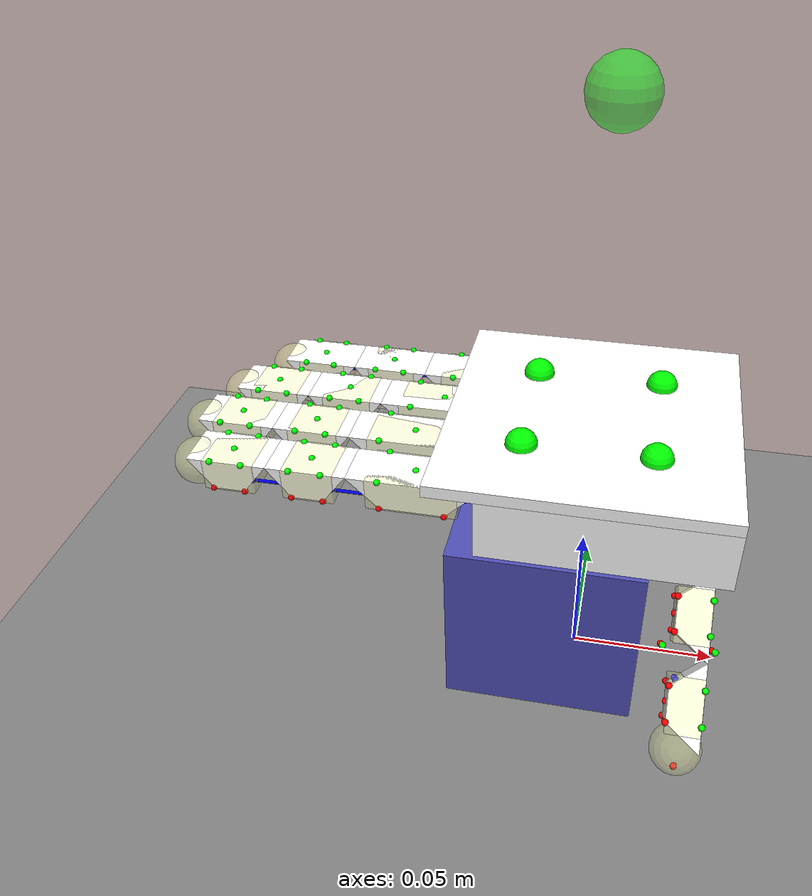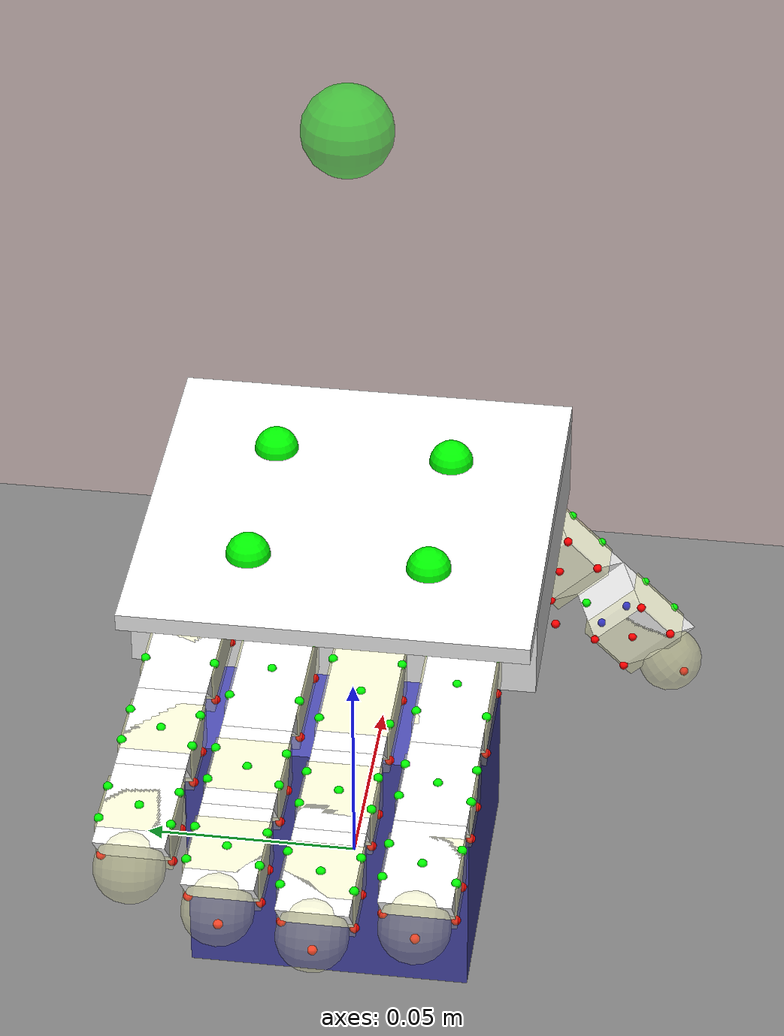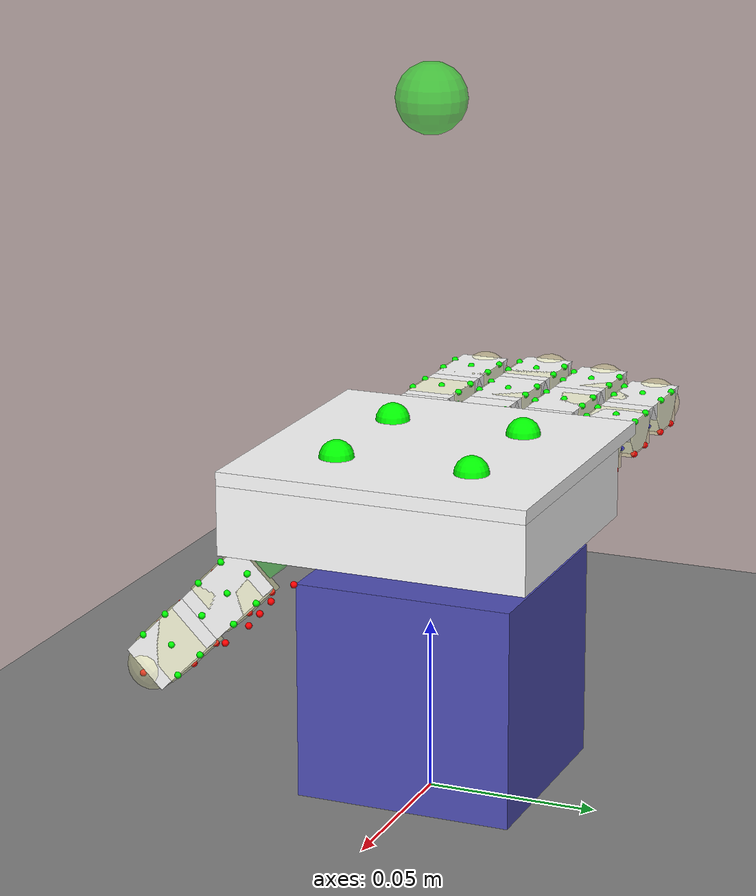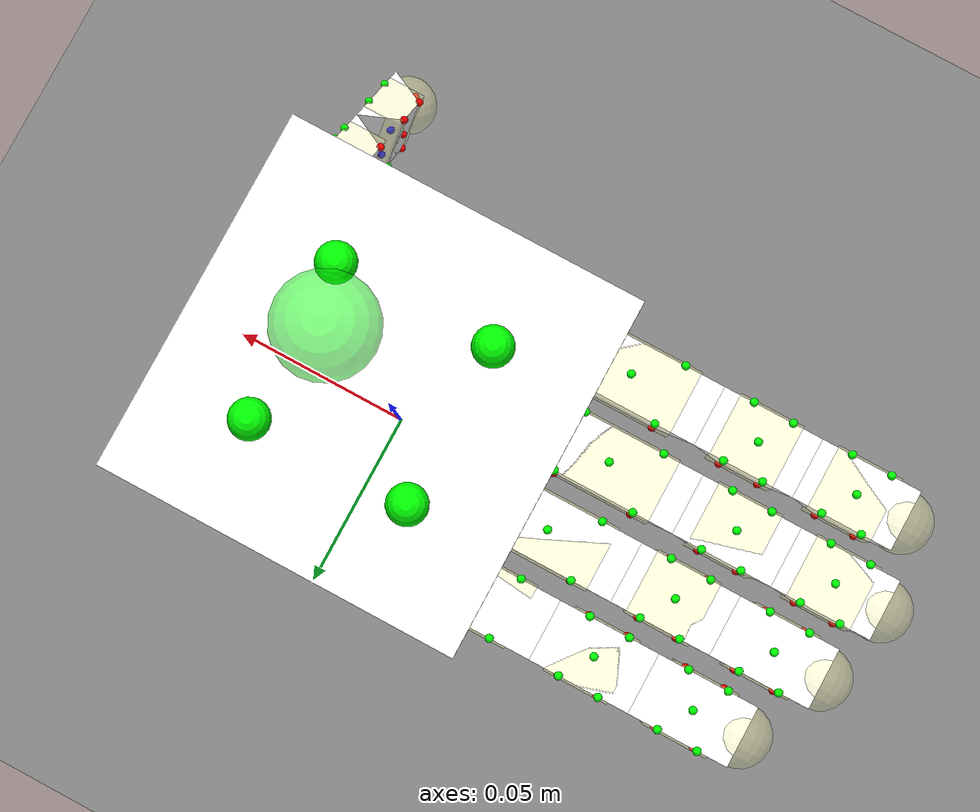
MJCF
<?xml version="1.0" ?>
<!-- Reorient手模型, 5x5 sphere tac sensors -->
<mujoco model="hand">
    <compiler angle="radian"/>
    <option integrator="implicitfast" />
    <option>
        <flag filterparent="disable"/>
    </option>
    <option gravity="0 0 -9.81"/>
    <keyframe>
        <key name="home"
            qpos="0 0 0 0 0 0 0 0 0 0 0 0 0 0 0 0 0 0 0 0 0 0 0 0 0 0 0 0 0 0 0 0"
            qvel="0 0 0 0 0 0 0 0 0 0 0 0 0 0 0 0 0 0 0 0 0 0 0 0 0 0 0 0 0 0 0"
            ctrl="0 0 0 0 0 0 0 0 0 0 0 0 0 0 0 0 0 0"
        />
    </keyframe>
    <default>
        <geom solref="0.001 1" solimp="0.99 0.999 0.0001"/>
        <default class="cube">
            <geom friction="2.0 0.1 0.002" contype="2" conaffinity="1" condim="4" />
        </default>
        <default class="hand">
            <geom contype="1" conaffinity="2" type="mesh" density="1250" friction="0.7 0.05 0.0002" solref="0.02 1.5" solimp="0.9 0.95 0.001" condim="3" rgba="0 0 1 0"/>
        </default>
        <default class="visual">
            <geom contype="0" conaffinity="0" group="2" density="0"/>
        </default>
        <default class="tendon">
            <tendon width=".0005" rgba="0 0 .9 1" solreflimit=".001 1" solimplimit="0.99 0.999 0.00001 0.1 20" stiffness="2000"/>
        </default>
        <default class="thumb_joint">
            <joint type="hinge" limited="true" solreflimit=".001 1" solimplimit="0.97 0.99 0.00001 0.1 2" damping="1" stiffness="1"/>
        </default>
        <default class="tip">
            <geom type="sphere" size="0.0075" rgba="1 1 .6 .3" contype="1" conaffinity="2" density="1000"
            friction="2.5 0.2 0.01" solref="0.01 1" solimp="0.98 0.995 0.001" condim="6"/>
        </default>
    </default>
    <asset>
        <mesh name="thumb_base_link" vertex="0.0 0.0 -0.0075 0.04 0.0 -0.0075 0.03 0.01 -0.0075 0.01 0.01 -0.0075 0.0 0.0 0.0075 0.04 0.0 0.0075 0.03 0.01 0.0075 0.01 0.01 0.0075" normal="-0.7734590803390136 -0.3203772410170408 -0.5469181606780271 0.7734590803390136 -0.3203772410170408 -0.5469181606780271 0.2971085791188998 0.7172835612062476 -0.6302624731310217 -0.2971085791188997 0.7172835612062475 -0.6302624731310217 -0.7734590803390136 -0.32037724101704074 0.5469181606780271 0.7734590803390138 -0.32037724101704057 0.5469181606780271 0.29710857911889976 0.7172835612062477 0.6302624731310216 -0.29710857911889976 0.7172835612062476 0.6302624731310217" face="1 0 3 3 2 1 7 4 5 5 6 7 5 4 1 1 4 0 6 5 2 2 5 1 4 7 0 0 7 3 7 6 3 3 6 2"/>
        <mesh name="thumb_link_1" vertex="0.0 0.0 -0.0075 0.04 0.0 -0.0075 0.03 0.01 -0.0075 0.01 0.01 -0.0075 0.0 0.0 0.0075 0.04 0.0 0.0075 0.03 0.01 0.0075 0.01 0.01 0.0075" normal="-0.7734590803390136 -0.3203772410170408 -0.5469181606780271 0.7734590803390136 -0.3203772410170408 -0.5469181606780271 0.2971085791188998 0.7172835612062476 -0.6302624731310217 -0.2971085791188997 0.7172835612062475 -0.6302624731310217 -0.7734590803390136 -0.32037724101704074 0.5469181606780271 0.7734590803390138 -0.32037724101704057 0.5469181606780271 0.29710857911889976 0.7172835612062477 0.6302624731310216 -0.29710857911889976 0.7172835612062476 0.6302624731310217" face="1 0 3 3 2 1 7 4 5 5 6 7 5 4 1 1 4 0 6 5 2 2 5 1 4 7 0 0 7 3 7 6 3 3 6 2"/>
        <mesh name="thumb_link_2" vertex="0.0 0.0 -0.0075 0.025 0.0 -0.0075 0.0175 0.01 -0.0075 0.007500000000000001 0.01 -0.0075 0.0 0.0 0.0075 0.025 0.0 0.0075 0.0175 0.01 0.0075 0.007500000000000001 0.01 0.0075" normal="-0.7464925414001442 -0.3732462707000721 -0.5508503490444955 0.7464925414001442 -0.3732462707000721 -0.5508503490444956 0.351257248032334 0.702514496064668 -0.618944043128098 -0.351257248032334 0.702514496064668 -0.618944043128098 -0.7464925414001442 -0.3732462707000721 0.5508503490444955 0.7464925414001442 -0.373246270700072 0.5508503490444956 0.351257248032334 0.7025144960646681 0.618944043128098 -0.351257248032334 0.702514496064668 0.618944043128098" face="1 0 3 3 2 1 7 4 5 5 6 7 5 4 1 1 4 0 6 5 2 2 5 1 4 7 0 0 7 3 7 6 3 3 6 2"/>
        <mesh name="thumb_link_3" vertex="0.0 0.0 -0.0075 0.025 0.0 -0.0075 0.0175 0.01 -0.0075 0.007500000000000001 0.01 -0.0075 0.0 0.0 0.0075 0.025 0.0 0.0075 0.0175 0.01 0.0075 0.007500000000000001 0.01 0.0075" normal="-0.7464925414001442 -0.3732462707000721 -0.5508503490444955 0.7464925414001442 -0.3732462707000721 -0.5508503490444956 0.351257248032334 0.702514496064668 -0.618944043128098 -0.351257248032334 0.702514496064668 -0.618944043128098 -0.7464925414001442 -0.3732462707000721 0.5508503490444955 0.7464925414001442 -0.373246270700072 0.5508503490444956 0.351257248032334 0.7025144960646681 0.618944043128098 -0.351257248032334 0.702514496064668 0.618944043128098" face="1 0 3 3 2 1 7 4 5 5 6 7 5 4 1 1 4 0 6 5 2 2 5 1 4 7 0 0 7 3 7 6 3 3 6 2"/>
        <mesh name="index_base_link" vertex="0.0 0.0 -0.0075 0.04 0.0 -0.0075 0.03 0.01 -0.0075 0.01 0.01 -0.0075 0.0 0.0 0.0075 0.04 0.0 0.0075 0.03 0.01 0.0075 0.01 0.01 0.0075" normal="-0.7734590803390136 -0.3203772410170408 -0.5469181606780271 0.7734590803390136 -0.3203772410170408 -0.5469181606780271 0.2971085791188998 0.7172835612062476 -0.6302624731310217 -0.2971085791188997 0.7172835612062475 -0.6302624731310217 -0.7734590803390136 -0.32037724101704074 0.5469181606780271 0.7734590803390138 -0.32037724101704057 0.5469181606780271 0.29710857911889976 0.7172835612062477 0.6302624731310216 -0.29710857911889976 0.7172835612062476 0.6302624731310217" face="1 0 3 3 2 1 7 4 5 5 6 7 5 4 1 1 4 0 6 5 2 2 5 1 4 7 0 0 7 3 7 6 3 3 6 2"/>
        <mesh name="index_link_1" vertex="0.0 0.0 -0.0075 0.04 0.0 -0.0075 0.03 0.01 -0.0075 0.01 0.01 -0.0075 0.0 0.0 0.0075 0.04 0.0 0.0075 0.03 0.01 0.0075 0.01 0.01 0.0075" normal="-0.7734590803390136 -0.3203772410170408 -0.5469181606780271 0.7734590803390136 -0.3203772410170408 -0.5469181606780271 0.2971085791188998 0.7172835612062476 -0.6302624731310217 -0.2971085791188997 0.7172835612062475 -0.6302624731310217 -0.7734590803390136 -0.32037724101704074 0.5469181606780271 0.7734590803390138 -0.32037724101704057 0.5469181606780271 0.29710857911889976 0.7172835612062477 0.6302624731310216 -0.29710857911889976 0.7172835612062476 0.6302624731310217" face="1 0 3 3 2 1 7 4 5 5 6 7 5 4 1 1 4 0 6 5 2 2 5 1 4 7 0 0 7 3 7 6 3 3 6 2"/>
        <mesh name="index_link_2" vertex="0.0 0.0 -0.0075 0.025 0.0 -0.0075 0.0175 0.01 -0.0075 0.007500000000000001 0.01 -0.0075 0.0 0.0 0.0075 0.025 0.0 0.0075 0.0175 0.01 0.0075 0.007500000000000001 0.01 0.0075" normal="-0.7464925414001442 -0.3732462707000721 -0.5508503490444955 0.7464925414001442 -0.3732462707000721 -0.5508503490444956 0.351257248032334 0.702514496064668 -0.618944043128098 -0.351257248032334 0.702514496064668 -0.618944043128098 -0.7464925414001442 -0.3732462707000721 0.5508503490444955 0.7464925414001442 -0.373246270700072 0.5508503490444956 0.351257248032334 0.7025144960646681 0.618944043128098 -0.351257248032334 0.702514496064668 0.618944043128098" face="1 0 3 3 2 1 7 4 5 5 6 7 5 4 1 1 4 0 6 5 2 2 5 1 4 7 0 0 7 3 7 6 3 3 6 2"/>
        <mesh name="index_link_3" vertex="0.0 0.0 -0.0075 0.025 0.0 -0.0075 0.0175 0.01 -0.0075 0.007500000000000001 0.01 -0.0075 0.0 0.0 0.0075 0.025 0.0 0.0075 0.0175 0.01 0.0075 0.007500000000000001 0.01 0.0075" normal="-0.7464925414001442 -0.3732462707000721 -0.5508503490444955 0.7464925414001442 -0.3732462707000721 -0.5508503490444956 0.351257248032334 0.702514496064668 -0.618944043128098 -0.351257248032334 0.702514496064668 -0.618944043128098 -0.7464925414001442 -0.3732462707000721 0.5508503490444955 0.7464925414001442 -0.373246270700072 0.5508503490444956 0.351257248032334 0.7025144960646681 0.618944043128098 -0.351257248032334 0.702514496064668 0.618944043128098" face="1 0 3 3 2 1 7 4 5 5 6 7 5 4 1 1 4 0 6 5 2 2 5 1 4 7 0 0 7 3 7 6 3 3 6 2"/>
        <mesh name="middle_base_link" vertex="0.0 0.0 -0.0075 0.04 0.0 -0.0075 0.03 0.01 -0.0075 0.01 0.01 -0.0075 0.0 0.0 0.0075 0.04 0.0 0.0075 0.03 0.01 0.0075 0.01 0.01 0.0075" normal="-0.7734590803390136 -0.3203772410170408 -0.5469181606780271 0.7734590803390136 -0.3203772410170408 -0.5469181606780271 0.2971085791188998 0.7172835612062476 -0.6302624731310217 -0.2971085791188997 0.7172835612062475 -0.6302624731310217 -0.7734590803390136 -0.32037724101704074 0.5469181606780271 0.7734590803390138 -0.32037724101704057 0.5469181606780271 0.29710857911889976 0.7172835612062477 0.6302624731310216 -0.29710857911889976 0.7172835612062476 0.6302624731310217" face="1 0 3 3 2 1 7 4 5 5 6 7 5 4 1 1 4 0 6 5 2 2 5 1 4 7 0 0 7 3 7 6 3 3 6 2"/>
        <mesh name="middle_link_1" vertex="0.0 0.0 -0.0075 0.04 0.0 -0.0075 0.03 0.01 -0.0075 0.01 0.01 -0.0075 0.0 0.0 0.0075 0.04 0.0 0.0075 0.03 0.01 0.0075 0.01 0.01 0.0075" normal="-0.7734590803390136 -0.3203772410170408 -0.5469181606780271 0.7734590803390136 -0.3203772410170408 -0.5469181606780271 0.2971085791188998 0.7172835612062476 -0.6302624731310217 -0.2971085791188997 0.7172835612062475 -0.6302624731310217 -0.7734590803390136 -0.32037724101704074 0.5469181606780271 0.7734590803390138 -0.32037724101704057 0.5469181606780271 0.29710857911889976 0.7172835612062477 0.6302624731310216 -0.29710857911889976 0.7172835612062476 0.6302624731310217" face="1 0 3 3 2 1 7 4 5 5 6 7 5 4 1 1 4 0 6 5 2 2 5 1 4 7 0 0 7 3 7 6 3 3 6 2"/>
        <mesh name="middle_link_2" vertex="0.0 0.0 -0.0075 0.025 0.0 -0.0075 0.0175 0.01 -0.0075 0.007500000000000001 0.01 -0.0075 0.0 0.0 0.0075 0.025 0.0 0.0075 0.0175 0.01 0.0075 0.007500000000000001 0.01 0.0075" normal="-0.7464925414001442 -0.3732462707000721 -0.5508503490444955 0.7464925414001442 -0.3732462707000721 -0.5508503490444956 0.351257248032334 0.702514496064668 -0.618944043128098 -0.351257248032334 0.702514496064668 -0.618944043128098 -0.7464925414001442 -0.3732462707000721 0.5508503490444955 0.7464925414001442 -0.373246270700072 0.5508503490444956 0.351257248032334 0.7025144960646681 0.618944043128098 -0.351257248032334 0.702514496064668 0.618944043128098" face="1 0 3 3 2 1 7 4 5 5 6 7 5 4 1 1 4 0 6 5 2 2 5 1 4 7 0 0 7 3 7 6 3 3 6 2"/>
        <mesh name="middle_link_3" vertex="0.0 0.0 -0.0075 0.025 0.0 -0.0075 0.0175 0.01 -0.0075 0.007500000000000001 0.01 -0.0075 0.0 0.0 0.0075 0.025 0.0 0.0075 0.0175 0.01 0.0075 0.007500000000000001 0.01 0.0075" normal="-0.7464925414001442 -0.3732462707000721 -0.5508503490444955 0.7464925414001442 -0.3732462707000721 -0.5508503490444956 0.351257248032334 0.702514496064668 -0.618944043128098 -0.351257248032334 0.702514496064668 -0.618944043128098 -0.7464925414001442 -0.3732462707000721 0.5508503490444955 0.7464925414001442 -0.373246270700072 0.5508503490444956 0.351257248032334 0.7025144960646681 0.618944043128098 -0.351257248032334 0.702514496064668 0.618944043128098" face="1 0 3 3 2 1 7 4 5 5 6 7 5 4 1 1 4 0 6 5 2 2 5 1 4 7 0 0 7 3 7 6 3 3 6 2"/>
        <mesh name="ring_base_link" vertex="0.0 0.0 -0.0075 0.04 0.0 -0.0075 0.03 0.01 -0.0075 0.01 0.01 -0.0075 0.0 0.0 0.0075 0.04 0.0 0.0075 0.03 0.01 0.0075 0.01 0.01 0.0075" normal="-0.7734590803390136 -0.3203772410170408 -0.5469181606780271 0.7734590803390136 -0.3203772410170408 -0.5469181606780271 0.2971085791188998 0.7172835612062476 -0.6302624731310217 -0.2971085791188997 0.7172835612062475 -0.6302624731310217 -0.7734590803390136 -0.32037724101704074 0.5469181606780271 0.7734590803390138 -0.32037724101704057 0.5469181606780271 0.29710857911889976 0.7172835612062477 0.6302624731310216 -0.29710857911889976 0.7172835612062476 0.6302624731310217" face="1 0 3 3 2 1 7 4 5 5 6 7 5 4 1 1 4 0 6 5 2 2 5 1 4 7 0 0 7 3 7 6 3 3 6 2"/>
        <mesh name="ring_link_1" vertex="0.0 0.0 -0.0075 0.04 0.0 -0.0075 0.03 0.01 -0.0075 0.01 0.01 -0.0075 0.0 0.0 0.0075 0.04 0.0 0.0075 0.03 0.01 0.0075 0.01 0.01 0.0075" normal="-0.7734590803390136 -0.3203772410170408 -0.5469181606780271 0.7734590803390136 -0.3203772410170408 -0.5469181606780271 0.2971085791188998 0.7172835612062476 -0.6302624731310217 -0.2971085791188997 0.7172835612062475 -0.6302624731310217 -0.7734590803390136 -0.32037724101704074 0.5469181606780271 0.7734590803390138 -0.32037724101704057 0.5469181606780271 0.29710857911889976 0.7172835612062477 0.6302624731310216 -0.29710857911889976 0.7172835612062476 0.6302624731310217" face="1 0 3 3 2 1 7 4 5 5 6 7 5 4 1 1 4 0 6 5 2 2 5 1 4 7 0 0 7 3 7 6 3 3 6 2"/>
        <mesh name="ring_link_2" vertex="0.0 0.0 -0.0075 0.025 0.0 -0.0075 0.0175 0.01 -0.0075 0.007500000000000001 0.01 -0.0075 0.0 0.0 0.0075 0.025 0.0 0.0075 0.0175 0.01 0.0075 0.007500000000000001 0.01 0.0075" normal="-0.7464925414001442 -0.3732462707000721 -0.5508503490444955 0.7464925414001442 -0.3732462707000721 -0.5508503490444956 0.351257248032334 0.702514496064668 -0.618944043128098 -0.351257248032334 0.702514496064668 -0.618944043128098 -0.7464925414001442 -0.3732462707000721 0.5508503490444955 0.7464925414001442 -0.373246270700072 0.5508503490444956 0.351257248032334 0.7025144960646681 0.618944043128098 -0.351257248032334 0.702514496064668 0.618944043128098" face="1 0 3 3 2 1 7 4 5 5 6 7 5 4 1 1 4 0 6 5 2 2 5 1 4 7 0 0 7 3 7 6 3 3 6 2"/>
        <mesh name="ring_link_3" vertex="0.0 0.0 -0.0075 0.025 0.0 -0.0075 0.0175 0.01 -0.0075 0.007500000000000001 0.01 -0.0075 0.0 0.0 0.0075 0.025 0.0 0.0075 0.0175 0.01 0.0075 0.007500000000000001 0.01 0.0075" normal="-0.7464925414001442 -0.3732462707000721 -0.5508503490444955 0.7464925414001442 -0.3732462707000721 -0.5508503490444956 0.351257248032334 0.702514496064668 -0.618944043128098 -0.351257248032334 0.702514496064668 -0.618944043128098 -0.7464925414001442 -0.3732462707000721 0.5508503490444955 0.7464925414001442 -0.373246270700072 0.5508503490444956 0.351257248032334 0.7025144960646681 0.618944043128098 -0.351257248032334 0.702514496064668 0.618944043128098" face="1 0 3 3 2 1 7 4 5 5 6 7 5 4 1 1 4 0 6 5 2 2 5 1 4 7 0 0 7 3 7 6 3 3 6 2"/>
        <mesh name="little_base_link" vertex="0.0 0.0 -0.0075 0.04 0.0 -0.0075 0.03 0.01 -0.0075 0.01 0.01 -0.0075 0.0 0.0 0.0075 0.04 0.0 0.0075 0.03 0.01 0.0075 0.01 0.01 0.0075" normal="-0.7734590803390136 -0.3203772410170408 -0.5469181606780271 0.7734590803390136 -0.3203772410170408 -0.5469181606780271 0.2971085791188998 0.7172835612062476 -0.6302624731310217 -0.2971085791188997 0.7172835612062475 -0.6302624731310217 -0.7734590803390136 -0.32037724101704074 0.5469181606780271 0.7734590803390138 -0.32037724101704057 0.5469181606780271 0.29710857911889976 0.7172835612062477 0.6302624731310216 -0.29710857911889976 0.7172835612062476 0.6302624731310217" face="1 0 3 3 2 1 7 4 5 5 6 7 5 4 1 1 4 0 6 5 2 2 5 1 4 7 0 0 7 3 7 6 3 3 6 2"/>
        <mesh name="little_link_1" vertex="0.0 0.0 -0.0075 0.04 0.0 -0.0075 0.03 0.01 -0.0075 0.01 0.01 -0.0075 0.0 0.0 0.0075 0.04 0.0 0.0075 0.03 0.01 0.0075 0.01 0.01 0.0075" normal="-0.7734590803390136 -0.3203772410170408 -0.5469181606780271 0.7734590803390136 -0.3203772410170408 -0.5469181606780271 0.2971085791188998 0.7172835612062476 -0.6302624731310217 -0.2971085791188997 0.7172835612062475 -0.6302624731310217 -0.7734590803390136 -0.32037724101704074 0.5469181606780271 0.7734590803390138 -0.32037724101704057 0.5469181606780271 0.29710857911889976 0.7172835612062477 0.6302624731310216 -0.29710857911889976 0.7172835612062476 0.6302624731310217" face="1 0 3 3 2 1 7 4 5 5 6 7 5 4 1 1 4 0 6 5 2 2 5 1 4 7 0 0 7 3 7 6 3 3 6 2"/>
        <mesh name="little_link_2" vertex="0.0 0.0 -0.0075 0.025 0.0 -0.0075 0.0175 0.01 -0.0075 0.007500000000000001 0.01 -0.0075 0.0 0.0 0.0075 0.025 0.0 0.0075 0.0175 0.01 0.0075 0.007500000000000001 0.01 0.0075" normal="-0.7464925414001442 -0.3732462707000721 -0.5508503490444955 0.7464925414001442 -0.3732462707000721 -0.5508503490444956 0.351257248032334 0.702514496064668 -0.618944043128098 -0.351257248032334 0.702514496064668 -0.618944043128098 -0.7464925414001442 -0.3732462707000721 0.5508503490444955 0.7464925414001442 -0.373246270700072 0.5508503490444956 0.351257248032334 0.7025144960646681 0.618944043128098 -0.351257248032334 0.702514496064668 0.618944043128098" face="1 0 3 3 2 1 7 4 5 5 6 7 5 4 1 1 4 0 6 5 2 2 5 1 4 7 0 0 7 3 7 6 3 3 6 2"/>
        <mesh name="little_link_3" vertex="0.0 0.0 -0.0075 0.025 0.0 -0.0075 0.0175 0.01 -0.0075 0.007500000000000001 0.01 -0.0075 0.0 0.0 0.0075 0.025 0.0 0.0075 0.0175 0.01 0.0075 0.007500000000000001 0.01 0.0075" normal="-0.7464925414001442 -0.3732462707000721 -0.5508503490444955 0.7464925414001442 -0.3732462707000721 -0.5508503490444956 0.351257248032334 0.702514496064668 -0.618944043128098 -0.351257248032334 0.702514496064668 -0.618944043128098 -0.7464925414001442 -0.3732462707000721 0.5508503490444955 0.7464925414001442 -0.373246270700072 0.5508503490444956 0.351257248032334 0.7025144960646681 0.618944043128098 -0.351257248032334 0.702514496064668 0.618944043128098" face="1 0 3 3 2 1 7 4 5 5 6 7 5 4 1 1 4 0 6 5 2 2 5 1 4 7 0 0 7 3 7 6 3 3 6 2"/>
        <texture type="2d" name="groundplane" builtin="checker" mark="edge" rgb1="1 1 1" rgb2="0 0 0" markrgb="0 0 0" width="300" height="300"/>
        <material name="groundplane" texture="groundplane" texuniform="true" texrepeat="5 5" reflectance="0"/>
    </asset>
    <worldbody>
        <!-- 一些辅助元素 -->
        <site name="target" pos="0 0 0.2" size="0.01" rgba="0 1 0 0.5"/>
        <geom name="floor" pos="0 0 0" size="0 0 0.01" type="plane" material="groundplane" contype="1" conaffinity="1" friction="1 0.05 0.05" solref="0.001 1" solimp="0.98 0.99 0.001"/>
        <!-- 手的定义 -->
        <body name="palm" pos="0 0 0.1" euler="0 3.1415 0" childclass="hand">
            <joint name="palm_slide_x" type="slide" axis="1 0 0" range="-.5 .5" limited="true" solreflimit=".001 1" solimplimit="0.97 0.99 0.00001 0.1 2" damping="0.2"/>
            <joint name="palm_slide_y" type="slide" axis="0 1 0" range="-.5 .5" limited="true" solreflimit=".001 1" solimplimit="0.97 0.99 0.00001 0.1 2" damping="0.2"/>
            <joint name="palm_slide_z" type="slide" axis="0 0 1" range="-.2 .12" limited="true" solreflimit=".001 1" solimplimit="0.97 0.99 0.00001 0.1 2" damping="0.2"/>
            <joint name="palm_rotate_x" type="hinge" axis="1 0 0" range="-1.57 1.57" limited="true" solreflimit=".001 1" solimplimit="0.97 0.99 0.00001 0.1 2" damping="0.2"/>
            <joint name="palm_rotate_y" type="hinge" axis="0 1 0" range="-1.57 1.57" limited="true" solreflimit=".001 1" solimplimit="0.97 0.99 0.00001 0.1 2" damping="0.2"/>
            <joint name="palm_rotate_z" type="hinge" axis="0 0 1" range="-3.14 3.14" limited="true" solreflimit=".001 1" solimplimit="0.97 0.99 0.00001 0.1 2" damping="0.2"/>
            <geom type="box" size="0.045 0.045 0.002" rgba="1 1 1 1" density="200"/>
            <geom type="box" size="0.0375 0.045 0.01" pos="-0.0075 0 0.012" rgba="1 1 1 1" density="200"/>
            <site name="inner_palm_1" size="0.005" rgba="1 0 0 1" pos=".02 .02 0.022"/>
            <site name="inner_palm_2" size="0.005" rgba="1 0 0 1" pos=".02 -.02 0.022"/>
            <site name="inner_palm_3" size="0.005" rgba="1 0 0 1" pos="-.02 .02 0.022"/>
            <site name="inner_palm_4" size="0.005" rgba="1 0 0 1" pos="-.02 -.02 0.022"/>
            <site name="outer_palm_1" size="0.005" rgba="0 1 0 1" pos=".02 .02 -0.002"/>
            <site name="outer_palm_2" size="0.005" rgba="0 1 0 1" pos=".02 -.02 -0.002"/>
            <site name="outer_palm_3" size="0.005" rgba="0 1 0 1" pos="-.02 .02 -0.002"/>
            <site name="outer_palm_4" size="0.005" rgba="0 1 0 1" pos="-.02 -.02 -0.002"/>
            <!-- 拇指基座 -->
            <body name="thumb_base_link" pos="-0.035 -0.02 0.01" euler="1.57 -1.57 0.0">
                <joint name="thumb_joint_0" axis="0 1 0" range="-0.5 0.5" class="thumb_joint"/>
                <inertial pos="0 0 0" mass="0.01" diaginertia="1e-5 1e-5 1e-5"/>
                <geom type="sphere" size=".002" class="visual"/>
                <!-- 拇指第一节 -->
                <body name="thumb_link_1" pos="0.01 0.01 0.0" euler="0.0 0.0 0.785">
                    <joint name="thumb_joint_1" axis="0 0 1" range="0 2.8" class="thumb_joint"/>
                    <geom class="visual" type="sphere" size=".002"/>
                    <inertial pos="0 0 0" mass="0.01" diaginertia="1e-5 1e-5 1e-5"/>
                    <geom type="box" size="0.007 0.005 0.005" rgba="0 1 0 0.3" density="200" class="visual"/>
                    <site name="inner_thumb_1_0" size="0.001" rgba="1 0 0 1" pos="0.02 0.01 0"/>
                    <site name="inner_thumb_1_1" size="0.001" rgba="1 0 0 1" pos="0.01 0.01 0.0075"/>
                    <site name="inner_thumb_1_2" size="0.001" rgba="1 0 0 1" pos="0.01 0.01 -0.0075"/>
                    <site name="inner_thumb_1_3" size="0.001" rgba="1 0 0 1" pos="0.03 0.01 0.0075"/>
                    <site name="inner_thumb_1_4" size="0.001" rgba="1 0 0 1" pos="0.03 0.01 -0.0075"/>
                    <site name="outer_thumb_1_0" size="0.001" rgba="0 1 0 1" pos="0.02 0 0"/>
                    <site name="outer_thumb_1_1" size="0.001" rgba="0 1 0 1" pos="0.01 0 0.0075"/>
                    <site name="outer_thumb_1_2" size="0.001" rgba="0 1 0 1" pos="0.01 0 -0.0075"/>
                    <site name="outer_thumb_1_3" size="0.001" rgba="0 1 0 1" pos="0.03 0 0.0075"/>
                    <site name="outer_thumb_1_4" size="0.001" rgba="0 1 0 1" pos="0.03 0 -0.0075"/>
                    <!-- 拇指第二节 -->
                    <body name="thumb_link_2" pos="0.008 0 0.005" euler="-1.57 0 0">
                        <joint name="thumb_joint_2" axis="0 0 1" range="0 0.5" class="thumb_joint"/>
                        <geom class="visual" type="mesh" rgba="1 1 1 1" mesh="thumb_link_2"/>
                        <geom type="mesh" mesh="thumb_link_2" rgba="0 0 1 1" density="200" class="visual"/>
                        <geom name="thumb_link_2_collision_box" type="box" pos="0.0125 0.005 0" size="0.008 0.005 0.008" rgba="1 1 .6 .3" />
                        <site name="inner_thumb_2_0" size="0.001" rgba="1 0 0 1" pos="0.0125 0.01 0"/>
                        <site name="inner_thumb_2_1" size="0.001" rgba="1 0 0 1" pos="0.007500000000000001 0.01 0.0075"/>
                        <site name="inner_thumb_2_2" size="0.001" rgba="1 0 0 1" pos="0.007500000000000001 0.01 -0.0075"/>
                        <site name="inner_thumb_2_3" size="0.001" rgba="1 0 0 1" pos="0.0175 0.01 0.0075"/>
                        <site name="inner_thumb_2_4" size="0.001" rgba="1 0 0 1" pos="0.0175 0.01 -0.0075"/>
                        <site name="outer_thumb_2_0" size="0.001" rgba="0 1 0 1" pos="0.0125 0 0"/>
                        <site name="outer_thumb_2_1" size="0.001" rgba="0 1 0 1" pos="0.007500000000000001 0 0.0075"/>
                        <site name="outer_thumb_2_2" size="0.001" rgba="0 1 0 1" pos="0.007500000000000001 0 -0.0075"/>
                        <site name="outer_thumb_2_3" size="0.001" rgba="0 1 0 1" pos="0.0175 0 0.0075"/>
                        <site name="outer_thumb_2_4" size="0.001" rgba="0 1 0 1" pos="0.0175 0 -0.0075"/>
                        <!-- 拇指第三节 -->
                        <body name="thumb_link_3" pos="0.025 0 0" euler="0 0 0">
                            <joint name="thumb_joint_3" axis="0 0 1" range="0 0.5" class="thumb_joint"/>
                            <geom conaffinity="0" contype="0" type="mesh" rgba="1 1 1 1" mesh="thumb_link_3"/>
                            <geom type="mesh" mesh="thumb_link_3" rgba="1 1 0 1" density="200" class="visual"/>
                            <site name="thumb_t1_3" pos="0.006 0.008 0.004" size="0.001" rgba="0 0 0.9 1"/>
                            <site name="thumb_t2_3" pos="0.006 0.008 -0.004" size="0.001" rgba="0 0 0.9 1"/>
                            <geom name="thumb_link_3_collision_box" type="box" pos="0.0125 0.005 0" size="0.008 0.005 0.008" rgba="1 1 .6 .3" />
                            <geom name="thumb_tip_collision" type="sphere" pos="0.025 0.006 0" class="tip"/>
                            <site name="thumb_fingertip" pos="0.03 0.006 0" size="0.001" rgba="0.9 0 0 1"/>
                            <site name="inner_thumb_3_0" size="0.001" rgba="1 0 0 1" pos="0.0125 0.01 0"/>
                            <site name="inner_thumb_3_1" size="0.001" rgba="1 0 0 1" pos="0.007500000000000001 0.01 0.0075"/>
                            <site name="inner_thumb_3_2" size="0.001" rgba="1 0 0 1" pos="0.007500000000000001 0.01 -0.0075"/>
                            <site name="inner_thumb_3_3" size="0.001" rgba="1 0 0 1" pos="0.0175 0.01 0.0075"/>
                            <site name="inner_thumb_3_4" size="0.001" rgba="1 0 0 1" pos="0.0175 0.01 -0.0075"/>
                            <site name="outer_thumb_3_0" size="0.001" rgba="0 1 0 1" pos="0.0125 0 0"/>
                            <site name="outer_thumb_3_1" size="0.001" rgba="0 1 0 1" pos="0.007500000000000001 0 0.0075"/>
                            <site name="outer_thumb_3_2" size="0.001" rgba="0 1 0 1" pos="0.007500000000000001 0 -0.0075"/>
                            <site name="outer_thumb_3_3" size="0.001" rgba="0 1 0 1" pos="0.0175 0 0.0075"/>
                            <site name="outer_thumb_3_4" size="0.001" rgba="0 1 0 1" pos="0.0175 0 -0.0075"/>
                        </body>
                    </body>
                </body>
            </body>
            <body name="index_base_link" pos="0.015 -0.03 0.005" euler="1.57 0.0 0.0">
                <joint name="index_swing" axis="0 -1 0" range="0 0.5" damping="0.2"/>
                <geom type="sphere" size=".002"/>
                <site name="index_t12" pos="0 0 0" size="0.001" rgba="0 0 0.9 1"/>
                <site name="index_t0" pos="-0.01 0 0" size="0.001" rgba="0 0 0.9 1"/>
                <body name="index_link_1" pos="0.015 0 0">
                    <joint name="index_joint_0" pos="0 0 0" axis="0 0 1" stiffness="0.2" springref="0.0" damping="0.2" range="0 3.14" frictionloss="0.08"/>
                    <geom name="index_link_1_collision_box" type="box" pos="0.02 0.005 0" size="0.014 0.005 0.008" rgba="1 1 .6 .3" />
                    <geom type="mesh" rgba="1 1 1 1" mesh="index_link_1" class="visual"/>
                    <site name="index_t1_1_1" pos="0.008 0.008 0.004" size="0.001" rgba="0 0 0.9 1"/>
                    <site name="index_t2_1_1" pos="0.008 0.008 -0.004" size="0.001" rgba="0 0 0.9 1"/>
                    <site name="index_t1_1_2" pos="0.032 0.008 0.004" size="0.001" rgba="0 0 0.9 1"/>
                    <site name="index_t2_1_2" pos="0.032 0.008 -0.004" size="0.001" rgba="0 0 0.9 1"/>
                    <site name="inner_index_1_0" size="0.001" rgba="1 0 0 1" pos="0.02 0.01 0"/>
                    <site name="inner_index_1_1" size="0.001" rgba="1 0 0 1" pos="0.01 0.01 0.0075"/>
                    <site name="inner_index_1_2" size="0.001" rgba="1 0 0 1" pos="0.01 0.01 -0.0075"/>
                    <site name="inner_index_1_3" size="0.001" rgba="1 0 0 1" pos="0.03 0.01 0.0075"/>
                    <site name="inner_index_1_4" size="0.001" rgba="1 0 0 1" pos="0.03 0.01 -0.0075"/>
                    <site name="outer_index_1_0" size="0.001" rgba="0 1 0 1" pos="0.02 0 0"/>
                    <site name="outer_index_1_1" size="0.001" rgba="0 1 0 1" pos="0.01 0 0.0075"/>
                    <site name="outer_index_1_2" size="0.001" rgba="0 1 0 1" pos="0.01 0 -0.0075"/>
                    <site name="outer_index_1_3" size="0.001" rgba="0 1 0 1" pos="0.03 0 0.0075"/>
                    <site name="outer_index_1_4" size="0.001" rgba="0 1 0 1" pos="0.03 0 -0.0075"/>
                    <body name="index_link_2" pos="0.04 0 0">
                        <joint name="index_joint_1" pos="0 0 0" axis="0 0 1" stiffness="0.2" springref="0.0" damping="0.05" range="0 3.14" frictionloss="0.04"/>
                        <geom name="index_link_2_collision_box" type="box" pos="0.012 0.005 0" size="0.008 0.005 0.008" rgba="1 1 .6 .3" />
                        <geom type="mesh" rgba="1 1 1 1" mesh="index_link_2" class="visual"/>
                        <site name="index_t1_2_1" pos="0.006 0.008 0.004" size="0.001" rgba="0 0 0.9 1"/>
                        <site name="index_t2_2_1" pos="0.006 0.008 -0.004" size="0.001" rgba="0 0 0.9 1"/>
                        <site name="index_t1_2_2" pos="0.019 0.008 0.004" size="0.001" rgba="0 0 0.9 1"/>
                        <site name="index_t2_2_2" pos="0.019 0.008 -0.004" size="0.001" rgba="0 0 0.9 1"/>
                        <site name="inner_index_2_0" size="0.001" rgba="1 0 0 1" pos="0.0125 0.01 0"/>
                        <site name="inner_index_2_1" size="0.001" rgba="1 0 0 1" pos="0.007500000000000001 0.01 0.0075"/>
                        <site name="inner_index_2_2" size="0.001" rgba="1 0 0 1" pos="0.007500000000000001 0.01 -0.0075"/>
                        <site name="inner_index_2_3" size="0.001" rgba="1 0 0 1" pos="0.0175 0.01 0.0075"/>
                        <site name="inner_index_2_4" size="0.001" rgba="1 0 0 1" pos="0.0175 0.01 -0.0075"/>
                        <site name="outer_index_2_0" size="0.001" rgba="0 1 0 1" pos="0.0125 0 0"/>
                        <site name="outer_index_2_1" size="0.001" rgba="0 1 0 1" pos="0.007500000000000001 0 0.0075"/>
                        <site name="outer_index_2_2" size="0.001" rgba="0 1 0 1" pos="0.007500000000000001 0 -0.0075"/>
                        <site name="outer_index_2_3" size="0.001" rgba="0 1 0 1" pos="0.0175 0 0.0075"/>
                        <site name="outer_index_2_4" size="0.001" rgba="0 1 0 1" pos="0.0175 0 -0.0075"/>
                        <body name="index_link_3" pos="0.025 0 0">
                            <joint name="index_joint_2" pos="0 0 0" axis="0 0 1" stiffness="0.2" springref="0.0" damping="0.01" range="0 1.3" frictionloss="0.02"/>
                            <geom name="index_tip_collision" pos="0.025 0.006 0" class="tip"/>
                            <geom type="mesh" rgba="1 1 1 1" mesh="index_link_3" class="visual"/>
                            <site name="index_t1_3" pos="0.006 0.008 0.004" size="0.001" rgba="0 0 0.9 1"/>
                            <site name="index_t2_3" pos="0.006 0.008 -0.004" size="0.001" rgba="0 0 0.9 1"/>
                            <geom name="index_link_3_collision_box" type="box" pos="0.012 0.005 0" size="0.008 0.005 0.008" rgba="1 1 .6 .3" />
                            <site name="index_fingertip" pos="0.024 0.01 0" size="0.001" rgba=".9 0 0 .9"/>
                            <site name="inner_index_3_0" size="0.001" rgba="1 0 0 1" pos="0.0125 0.01 0"/>
                            <site name="inner_index_3_1" size="0.001" rgba="1 0 0 1" pos="0.007500000000000001 0.01 0.0075"/>
                            <site name="inner_index_3_2" size="0.001" rgba="1 0 0 1" pos="0.007500000000000001 0.01 -0.0075"/>
                            <site name="inner_index_3_3" size="0.001" rgba="1 0 0 1" pos="0.0175 0.01 0.0075"/>
                            <site name="inner_index_3_4" size="0.001" rgba="1 0 0 1" pos="0.0175 0.01 -0.0075"/>
                            <site name="outer_index_3_0" size="0.001" rgba="0 1 0 1" pos="0.0125 0 0"/>
                            <site name="outer_index_3_1" size="0.001" rgba="0 1 0 1" pos="0.007500000000000001 0 0.0075"/>
                            <site name="outer_index_3_2" size="0.001" rgba="0 1 0 1" pos="0.007500000000000001 0 -0.0075"/>
                            <site name="outer_index_3_3" size="0.001" rgba="0 1 0 1" pos="0.0175 0 0.0075"/>
                            <site name="outer_index_3_4" size="0.001" rgba="0 1 0 1" pos="0.0175 0 -0.0075"/>
                        </body>
                    </body>
                </body>
            </body>
            <body name="middle_base_link" pos="0.02 -0.01 0.005" euler="1.57 0.0 0.0">
                <joint name="middle_swing" axis="0 1 0" range="-0.2 0.2" damping="0.2"/>
                <geom type="sphere" size=".002"/>
                <site name="middle_t12" pos="0 0 0" size="0.001" rgba="0 0 0.9 1"/>
                <site name="middle_t0" pos="-0.01 0 0" size="0.001" rgba="0 0 0.9 1"/>
                <body name="middle_link_1" pos="0.015 0 0">
                    <joint name="middle_joint_0" pos="0 0 0" axis="0 0 1" stiffness="0.1" springref="0.0" damping="0.2" range="0 3.14"/>
                    <geom type="mesh" rgba="1 1 1 1" mesh="middle_link_1" class="visual"/>
                    <geom name="middle_link_1_collision_box" type="box" pos="0.02 0.005 0" size="0.014 0.005 0.008" rgba="1 1 .6 .3" />
                    <site name="middle_t1_1_1" pos="0.008 0.008 0.004" size="0.001" rgba="0 0 0.9 1"/>
                    <site name="middle_t2_1_1" pos="0.008 0.008 -0.004" size="0.001" rgba="0 0 0.9 1"/>
                    <site name="middle_t1_1_2" pos="0.032 0.008 0.004" size="0.001" rgba="0 0 0.9 1"/>
                    <site name="middle_t2_1_2" pos="0.032 0.008 -0.004" size="0.001" rgba="0 0 0.9 1"/>
                    <site name="inner_middle_1_0" size="0.001" rgba="1 0 0 1" pos="0.02 0.01 0"/>
                    <site name="inner_middle_1_1" size="0.001" rgba="1 0 0 1" pos="0.01 0.01 0.0075"/>
                    <site name="inner_middle_1_2" size="0.001" rgba="1 0 0 1" pos="0.01 0.01 -0.0075"/>
                    <site name="inner_middle_1_3" size="0.001" rgba="1 0 0 1" pos="0.03 0.01 0.0075"/>
                    <site name="inner_middle_1_4" size="0.001" rgba="1 0 0 1" pos="0.03 0.01 -0.0075"/>
                    <site name="outer_middle_1_0" size="0.001" rgba="0 1 0 1" pos="0.02 0 0"/>
                    <site name="outer_middle_1_1" size="0.001" rgba="0 1 0 1" pos="0.01 0 0.0075"/>
                    <site name="outer_middle_1_2" size="0.001" rgba="0 1 0 1" pos="0.01 0 -0.0075"/>
                    <site name="outer_middle_1_3" size="0.001" rgba="0 1 0 1" pos="0.03 0 0.0075"/>
                    <site name="outer_middle_1_4" size="0.001" rgba="0 1 0 1" pos="0.03 0 -0.0075"/>
                    <body name="middle_link_2" pos="0.04 0 0">
                        <joint name="middle_joint_1" pos="0 0 0" axis="0 0 1" stiffness="0.1" springref="0.0" damping="0.2" range="0 3.14"/>
                        <geom type="mesh" rgba="1 1 1 1" mesh="middle_link_2" class="visual"/>
                        <site name="middle_t1_2_1" pos="0.006 0.008 0.004" size="0.001" rgba="0 0 0.9 1"/>
                        <site name="middle_t2_2_1" pos="0.006 0.008 -0.004" size="0.001" rgba="0 0 0.9 1"/>
                        <site name="middle_t1_2_2" pos="0.019000000000000003 0.008 0.004" size="0.001" rgba="0 0 0.9 1"/>
                        <site name="middle_t2_2_2" pos="0.019000000000000003 0.008 -0.004" size="0.001" rgba="0 0 0.9 1"/>
                        <geom name="middle_link_2_collision_box" type="box" pos="0.012 0.005 0" size="0.008 0.005 0.008" rgba="1 1 .6 .3" />
                        <site name="inner_middle_2_0" size="0.001" rgba="1 0 0 1" pos="0.0125 0.01 0"/>
                        <site name="inner_middle_2_1" size="0.001" rgba="1 0 0 1" pos="0.007500000000000001 0.01 0.0075"/>
                        <site name="inner_middle_2_2" size="0.001" rgba="1 0 0 1" pos="0.007500000000000001 0.01 -0.0075"/>
                        <site name="inner_middle_2_3" size="0.001" rgba="1 0 0 1" pos="0.0175 0.01 0.0075"/>
                        <site name="inner_middle_2_4" size="0.001" rgba="1 0 0 1" pos="0.0175 0.01 -0.0075"/>
                        <site name="outer_middle_2_0" size="0.001" rgba="0 1 0 1" pos="0.0125 0 0"/>
                        <site name="outer_middle_2_1" size="0.001" rgba="0 1 0 1" pos="0.007500000000000001 0 0.0075"/>
                        <site name="outer_middle_2_2" size="0.001" rgba="0 1 0 1" pos="0.007500000000000001 0 -0.0075"/>
                        <site name="outer_middle_2_3" size="0.001" rgba="0 1 0 1" pos="0.0175 0 0.0075"/>
                        <site name="outer_middle_2_4" size="0.001" rgba="0 1 0 1" pos="0.0175 0 -0.0075"/>
                        <body name="middle_link_3" pos="0.025 0 0">
                            <joint name="middle_joint_2" pos="0 0 0" axis="0 0 1" stiffness="0.1" springref="0.0" damping="0.2" range="0 1.3"/>
                            <geom name="middle_tip_collision" pos="0.025 0.006 0" class="tip"/>
                            <geom type="mesh" rgba="1 1 1 1" mesh="middle_link_3" class="visual"/>
                            <site name="middle_t1_3" pos="0.006 0.008 0.004" size="0.001" rgba="0 0 0.9 1"/>
                            <site name="middle_t2_3" pos="0.006 0.008 -0.004" size="0.001" rgba="0 0 0.9 1"/>
                            <geom name="middle_link_3_collision_box" type="box" pos="0.012 0.005 0" size="0.008 0.005 0.008" rgba="1 1 .6 .3" />
                            <site name="middle_fingertip" pos="0.025 0.01 0" size="0.001" rgba="1 0 0 1"/>
                            <site name="inner_middle_3_0" size="0.001" rgba="1 0 0 1" pos="0.0125 0.01 0"/>
                            <site name="inner_middle_3_1" size="0.001" rgba="1 0 0 1" pos="0.007500000000000001 0.01 0.0075"/>
                            <site name="inner_middle_3_2" size="0.001" rgba="1 0 0 1" pos="0.007500000000000001 0.01 -0.0075"/>
                            <site name="inner_middle_3_3" size="0.001" rgba="1 0 0 1" pos="0.0175 0.01 0.0075"/>
                            <site name="inner_middle_3_4" size="0.001" rgba="1 0 0 1" pos="0.0175 0.01 -0.0075"/>
                            <site name="outer_middle_3_0" size="0.001" rgba="0 1 0 1" pos="0.0125 0 0"/>
                            <site name="outer_middle_3_1" size="0.001" rgba="0 1 0 1" pos="0.007500000000000001 0 0.0075"/>
                            <site name="outer_middle_3_2" size="0.001" rgba="0 1 0 1" pos="0.007500000000000001 0 -0.0075"/>
                            <site name="outer_middle_3_3" size="0.001" rgba="0 1 0 1" pos="0.0175 0 0.0075"/>
                            <site name="outer_middle_3_4" size="0.001" rgba="0 1 0 1" pos="0.0175 0 -0.0075"/>
                        </body>
                    </body>
                </body>
            </body>
            <body name="ring_base_link" pos="0.015 0.01 0.005" euler="1.57 0.0 0.0">
                <joint name="ring_swing" axis="0 1 0" range="0 0.5" damping="0.2"/>
                <geom type="sphere" size=".002"/>
                <site name="ring_t12" pos="0 0 0" size="0.001" rgba="0 0 0.9 1"/>
                <site name="ring_t0" pos="-0.01 0 0" size="0.001" rgba="0 0 0.9 1"/>
                <body name="ring_link_1" pos="0.015 0 0">
                    <joint name="ring_joint_0" pos="0 0 0" axis="0 0 1" stiffness="0.1" springref="0.0" damping="0.2" range="0 3.14"/>
                    <geom type="mesh" rgba="1 1 1 1" mesh="ring_link_1" class="visual"/>
                    <geom name="ring_link_1_collision_box" type="box" pos="0.02 0.005 0" size="0.014 0.005 0.008" rgba="1 1 .6 .3" />
                    <site name="ring_t1_1_1" pos="0.008 0.008 0.004" size="0.001" rgba="0 0 0.9 1"/>
                    <site name="ring_t2_1_1" pos="0.008 0.008 -0.004" size="0.001" rgba="0 0 0.9 1"/>
                    <site name="ring_t1_1_2" pos="0.032 0.008 0.004" size="0.001" rgba="0 0 0.9 1"/>
                    <site name="ring_t2_1_2" pos="0.032 0.008 -0.004" size="0.001" rgba="0 0 0.9 1"/>
                    <site name="inner_ring_1_0" size="0.001" rgba="1 0 0 1" pos="0.02 0.01 0"/>
                    <site name="inner_ring_1_1" size="0.001" rgba="1 0 0 1" pos="0.01 0.01 0.0075"/>
                    <site name="inner_ring_1_2" size="0.001" rgba="1 0 0 1" pos="0.01 0.01 -0.0075"/>
                    <site name="inner_ring_1_3" size="0.001" rgba="1 0 0 1" pos="0.03 0.01 0.0075"/>
                    <site name="inner_ring_1_4" size="0.001" rgba="1 0 0 1" pos="0.03 0.01 -0.0075"/>
                    <site name="outer_ring_1_0" size="0.001" rgba="0 1 0 1" pos="0.02 0 0"/>
                    <site name="outer_ring_1_1" size="0.001" rgba="0 1 0 1" pos="0.01 0 0.0075"/>
                    <site name="outer_ring_1_2" size="0.001" rgba="0 1 0 1" pos="0.01 0 -0.0075"/>
                    <site name="outer_ring_1_3" size="0.001" rgba="0 1 0 1" pos="0.03 0 0.0075"/>
                    <site name="outer_ring_1_4" size="0.001" rgba="0 1 0 1" pos="0.03 0 -0.0075"/>
                    <body name="ring_link_2" pos="0.04 0 0">
                        <joint name="ring_joint_1" pos="0 0 0" axis="0 0 1" stiffness="0.1" springref="0.0" damping="0.2" range="0 3.14"/>
                        <geom type="mesh" rgba="1 1 1 1" mesh="ring_link_2" class="visual"/>
                        <geom name="ring_link_2_collision_box" type="box" pos="0.012 0.005 0" size="0.008 0.005 0.008" rgba="1 1 .6 .3" />
                        <site name="ring_t1_2_1" pos="0.006 0.008 0.004" size="0.001" rgba="0 0 0.9 1"/>
                        <site name="ring_t2_2_1" pos="0.006 0.008 -0.004" size="0.001" rgba="0 0 0.9 1"/>
                        <site name="ring_t1_2_2" pos="0.019000000000000003 0.008 0.004" size="0.001" rgba="0 0 0.9 1"/>
                        <site name="ring_t2_2_2" pos="0.019000000000000003 0.008 -0.004" size="0.001" rgba="0 0 0.9 1"/>
                        <site name="inner_ring_2_0" size="0.001" rgba="1 0 0 1" pos="0.0125 0.01 0"/>
                        <site name="inner_ring_2_1" size="0.001" rgba="1 0 0 1" pos="0.007500000000000001 0.01 0.0075"/>
                        <site name="inner_ring_2_2" size="0.001" rgba="1 0 0 1" pos="0.007500000000000001 0.01 -0.0075"/>
                        <site name="inner_ring_2_3" size="0.001" rgba="1 0 0 1" pos="0.0175 0.01 0.0075"/>
                        <site name="inner_ring_2_4" size="0.001" rgba="1 0 0 1" pos="0.0175 0.01 -0.0075"/>
                        <site name="outer_ring_2_0" size="0.001" rgba="0 1 0 1" pos="0.0125 0 0"/>
                        <site name="outer_ring_2_1" size="0.001" rgba="0 1 0 1" pos="0.007500000000000001 0 0.0075"/>
                        <site name="outer_ring_2_2" size="0.001" rgba="0 1 0 1" pos="0.007500000000000001 0 -0.0075"/>
                        <site name="outer_ring_2_3" size="0.001" rgba="0 1 0 1" pos="0.0175 0 0.0075"/>
                        <site name="outer_ring_2_4" size="0.001" rgba="0 1 0 1" pos="0.0175 0 -0.0075"/>
                        <body name="ring_link_3" pos="0.025 0 0">
                            <joint name="ring_joint_2" pos="0 0 0" axis="0 0 1" stiffness="0.1" springref="0.0" damping="0.2" range="0 1.3"/>
                            <geom name="ring_tip_collision" pos="0.025 0.006 0" class="tip"/>
                            <geom type="mesh" rgba="1 1 1 1" mesh="ring_link_3" class="visual"/>
                            <site name="ring_t1_3" pos="0.006 0.008 0.004" size="0.001" rgba="0 0 0.9 1"/>
                            <site name="ring_t2_3" pos="0.006 0.008 -0.004" size="0.001" rgba="0 0 0.9 1"/>
                            <geom name="ring_link_3_collision_box" type="box" pos="0.012 0.005 0" size="0.008 0.005 0.008" rgba="1 1 .6 .3" />
                            <site name="ring_fingertip" pos="0.025 0.01 0" size="0.001" rgba="1 0 0 1"/>
                            <site name="inner_ring_3_0" size="0.001" rgba="1 0 0 1" pos="0.0125 0.01 0"/>
                            <site name="inner_ring_3_1" size="0.001" rgba="1 0 0 1" pos="0.007500000000000001 0.01 0.0075"/>
                            <site name="inner_ring_3_2" size="0.001" rgba="1 0 0 1" pos="0.007500000000000001 0.01 -0.0075"/>
                            <site name="inner_ring_3_3" size="0.001" rgba="1 0 0 1" pos="0.0175 0.01 0.0075"/>
                            <site name="inner_ring_3_4" size="0.001" rgba="1 0 0 1" pos="0.0175 0.01 -0.0075"/>
                            <site name="outer_ring_3_0" size="0.001" rgba="0 1 0 1" pos="0.0125 0 0"/>
                            <site name="outer_ring_3_1" size="0.001" rgba="0 1 0 1" pos="0.007500000000000001 0 0.0075"/>
                            <site name="outer_ring_3_2" size="0.001" rgba="0 1 0 1" pos="0.007500000000000001 0 -0.0075"/>
                            <site name="outer_ring_3_3" size="0.001" rgba="0 1 0 1" pos="0.0175 0 0.0075"/>
                            <site name="outer_ring_3_4" size="0.001" rgba="0 1 0 1" pos="0.0175 0 -0.0075"/>
                        </body>
                    </body>
                </body>
            </body>
            <body name="little_base_link" pos="0.005 0.03 0.005" euler="1.57 0.0 0.0">
                <joint name="little_swing" axis="0 1 0" range="0 0.75" damping="0.2"/>
                <geom type="sphere" size=".002"/>
                <site name="little_t12" pos="0 0 0" size="0.001" rgba="0 0 0.9 1"/>
                <site name="little_t0" pos="-0.01 0 0" size="0.001" rgba="0 0 0.9 1"/>
                <body name="little_link_1" pos="0.015 0 0">
                    <joint name="little_joint_0" pos="0 0 0" axis="0 0 1" stiffness="0.1" springref="0.0" damping="0.2" range="0 3.14"/>
                    <geom type="mesh" rgba="1 1 1 1" mesh="little_link_1" class="visual"/>
                    <geom name="little_link_1_collision_box" type="box" pos="0.02 0.005 0" size="0.014 0.005 0.008" rgba="1 1 .6 .3" />
                    <site name="little_t1_1_1" pos="0.008 0.008 0.004" size="0.001" rgba="0 0 0.9 1"/>
                    <site name="little_t2_1_1" pos="0.008 0.008 -0.004" size="0.001" rgba="0 0 0.9 1"/>
                    <site name="little_t1_1_2" pos="0.032 0.008 0.004" size="0.001" rgba="0 0 0.9 1"/>
                    <site name="little_t2_1_2" pos="0.032 0.008 -0.004" size="0.001" rgba="0 0 0.9 1"/>
                    <site name="inner_little_1_0" size="0.001" rgba="1 0 0 1" pos="0.02 0.01 0"/>
                    <site name="inner_little_1_1" size="0.001" rgba="1 0 0 1" pos="0.01 0.01 0.0075"/>
                    <site name="inner_little_1_2" size="0.001" rgba="1 0 0 1" pos="0.01 0.01 -0.0075"/>
                    <site name="inner_little_1_3" size="0.001" rgba="1 0 0 1" pos="0.03 0.01 0.0075"/>
                    <site name="inner_little_1_4" size="0.001" rgba="1 0 0 1" pos="0.03 0.01 -0.0075"/>
                    <site name="outer_little_1_0" size="0.001" rgba="0 1 0 1" pos="0.02 0 0"/>
                    <site name="outer_little_1_1" size="0.001" rgba="0 1 0 1" pos="0.01 0 0.0075"/>
                    <site name="outer_little_1_2" size="0.001" rgba="0 1 0 1" pos="0.01 0 -0.0075"/>
                    <site name="outer_little_1_3" size="0.001" rgba="0 1 0 1" pos="0.03 0 0.0075"/>
                    <site name="outer_little_1_4" size="0.001" rgba="0 1 0 1" pos="0.03 0 -0.0075"/>
                    <body name="little_link_2" pos="0.04 0 0">
                        <joint name="little_joint_1" pos="0 0 0" axis="0 0 1" stiffness="0.1" springref="0.0" damping="0.2" range="0 3.14"/>
                        <geom type="mesh" rgba="1 1 1 1" mesh="little_link_2" class="visual"/>
                        <geom name="little_link_2_collision_box" type="box" pos="0.012 0.005 0" size="0.008 0.005 0.008" rgba="1 1 .6 .3" />
                        <site name="little_t1_2_1" pos="0.006 0.008 0.004" size="0.001" rgba="0 0 0.9 1"/>
                        <site name="little_t2_2_1" pos="0.006 0.008 -0.004" size="0.001" rgba="0 0 0.9 1"/>
                        <site name="little_t1_2_2" pos="0.019000000000000003 0.008 0.004" size="0.001" rgba="0 0 0.9 1"/>
                        <site name="little_t2_2_2" pos="0.019000000000000003 0.008 -0.004" size="0.001" rgba="0 0 0.9 1"/>
                        <site name="inner_little_2_0" size="0.001" rgba="1 0 0 1" pos="0.0125 0.01 0"/>
                        <site name="inner_little_2_1" size="0.001" rgba="1 0 0 1" pos="0.007500000000000001 0.01 0.0075"/>
                        <site name="inner_little_2_2" size="0.001" rgba="1 0 0 1" pos="0.007500000000000001 0.01 -0.0075"/>
                        <site name="inner_little_2_3" size="0.001" rgba="1 0 0 1" pos="0.0175 0.01 0.0075"/>
                        <site name="inner_little_2_4" size="0.001" rgba="1 0 0 1" pos="0.0175 0.01 -0.0075"/>
                        <site name="outer_little_2_0" size="0.001" rgba="0 1 0 1" pos="0.0125 0 0"/>
                        <site name="outer_little_2_1" size="0.001" rgba="0 1 0 1" pos="0.007500000000000001 0 0.0075"/>
                        <site name="outer_little_2_2" size="0.001" rgba="0 1 0 1" pos="0.007500000000000001 0 -0.0075"/>
                        <site name="outer_little_2_3" size="0.001" rgba="0 1 0 1" pos="0.0175 0 0.0075"/>
                        <site name="outer_little_2_4" size="0.001" rgba="0 1 0 1" pos="0.0175 0 -0.0075"/>
                        <body name="little_link_3" pos="0.025 0 0">
                            <joint name="little_joint_2" pos="0 0 0" axis="0 0 1" stiffness="0.1" springref="0.0" damping="0.2" range="0 1.3"/>
                            <geom name="little_tip_collision" type="sphere" pos="0.025 0.006 0" size="0.0075" rgba="1 1 .6 .3" contype="1" conaffinity="2" density="1000"/>
                            <site name="little_fingertip" pos="0.025 0.01 0" size="0.001" rgba="1 0 0 .3"/>
                            <geom type="mesh" rgba="1 1 1 1" mesh="little_link_3" class="visual"/>
                            <geom name="little_link_3_collision_box" type="box" pos="0.012 0.005 0" size="0.008 0.005 0.008" rgba="1 1 .6 .3" />
                            <site name="little_t1_3" pos="0.006 0.008 0.004" size="0.001" rgba="0 0 0.9 1"/>
                            <site name="little_t2_3" pos="0.006 0.008 -0.004" size="0.001" rgba="0 0 0.9 1"/>
                            <site name="inner_little_3_0" size="0.001" rgba="1 0 0 1" pos="0.0125 0.01 0"/>
                            <site name="inner_little_3_1" size="0.001" rgba="1 0 0 1" pos="0.007500000000000001 0.01 0.0075"/>
                            <site name="inner_little_3_2" size="0.001" rgba="1 0 0 1" pos="0.007500000000000001 0.01 -0.0075"/>
                            <site name="inner_little_3_3" size="0.001" rgba="1 0 0 1" pos="0.0175 0.01 0.0075"/>
                            <site name="inner_little_3_4" size="0.001" rgba="1 0 0 1" pos="0.0175 0.01 -0.0075"/>
                            <site name="outer_little_3_0" size="0.001" rgba="0 1 0 1" pos="0.0125 0 0"/>
                            <site name="outer_little_3_1" size="0.001" rgba="0 1 0 1" pos="0.007500000000000001 0 0.0075"/>
                            <site name="outer_little_3_2" size="0.001" rgba="0 1 0 1" pos="0.007500000000000001 0 -0.0075"/>
                            <site name="outer_little_3_3" size="0.001" rgba="0 1 0 1" pos="0.0175 0 0.0075"/>
                            <site name="outer_little_3_4" size="0.001" rgba="0 1 0 1" pos="0.0175 0 -0.0075"/>
                        </body>
                    </body>
                </body>
            </body>
        </body>
        <!-- cube 的定义 -->
        <body name="cube" pos="-0.01 0.0 0.032" quat="1 0 0 0" childclass="cube">
            <freejoint name="cube_freejoint"/>
            <geom name="cube" type="box" size=".032 .032 .032" mass=".05" group="0" rgba="0.3 0.3 0.7 1"/>
            <site name="cube_center" pos="0 0 0" group="4"/>
        </body>
    </worldbody>
    <tendon>
        <spatial name="index_tendon" class="tendon">
            <site site="index_t0"/>
            <site site="index_t12"/>
            <pulley divisor="2"/>
            <site site="index_t12"/>
            <site site="index_t1_1_1"/>
            <site site="index_t1_1_2"/>
            <site site="index_t1_2_1"/>
            <site site="index_t1_2_2"/>
            <site site="index_t1_3"/>
            <pulley divisor="2"/>
            <site site="index_t12"/>
            <site site="index_t2_1_1"/>
            <site site="index_t2_1_2"/>
            <site site="index_t2_2_1"/>
            <site site="index_t2_2_2"/>
            <site site="index_t2_3"/>
        </spatial>
        <spatial name="middle_tendon" class="tendon">
            <site site="middle_t0"/>
            <site site="middle_t12"/>
            <pulley divisor="2"/>
            <site site="middle_t12"/>
            <site site="middle_t1_1_1"/>
            <site site="middle_t1_1_2"/>
            <site site="middle_t1_2_1"/>
            <site site="middle_t1_2_2"/>
            <site site="middle_t1_3"/>
            <pulley divisor="2"/>
            <site site="middle_t12"/>
            <site site="middle_t2_1_1"/>
            <site site="middle_t2_1_2"/>
            <site site="middle_t2_2_1"/>
            <site site="middle_t2_2_2"/>
            <site site="middle_t2_3"/>
        </spatial>
        <spatial name="ring_tendon" class="tendon">
            <site site="ring_t0"/>
            <site site="ring_t12"/>
            <pulley divisor="2"/>
            <site site="ring_t12"/>
            <site site="ring_t1_1_1"/>
            <site site="ring_t1_1_2"/>
            <site site="ring_t1_2_1"/>
            <site site="ring_t1_2_2"/>
            <site site="ring_t1_3"/>
            <pulley divisor="2"/>
            <site site="ring_t12"/>
            <site site="ring_t2_1_1"/>
            <site site="ring_t2_1_2"/>
            <site site="ring_t2_2_1"/>
            <site site="ring_t2_2_2"/>
            <site site="ring_t2_3"/>
        </spatial>
        <spatial name="little_tendon" class="tendon">
            <site site="little_t0"/>
            <site site="little_t12"/>
            <pulley divisor="2"/>
            <site site="little_t12"/>
            <site site="little_t1_1_1"/>
            <site site="little_t1_1_2"/>
            <site site="little_t1_2_1"/>
            <site site="little_t1_2_2"/>
            <site site="little_t1_3"/>
            <pulley divisor="2"/>
            <site site="little_t12"/>
            <site site="little_t2_1_1"/>
            <site site="little_t2_1_2"/>
            <site site="little_t2_2_1"/>
            <site site="little_t2_2_2"/>
            <site site="little_t2_3"/>
        </spatial>
    </tendon>
    <actuator>
        <!-- 拇指 KP 从 40 提高到 200-300 -->
        <position name="thumb_joint_0" joint="thumb_joint_0" ctrllimited="true" ctrlrange="-1 1" kp="200"/>
        <position name="thumb_joint_1" joint="thumb_joint_1" ctrllimited="true" ctrlrange="0 2" kp="200"/>
        <position name="thumb_joint_2" joint="thumb_joint_2" ctrllimited="true" ctrlrange="0 1" kp="200"/>
        <position name="thumb_joint_3" joint="thumb_joint_3" ctrllimited="true" ctrlrange="0 1" kp="200"/>
        <!-- 肌腱驱动的手指 KP 从 80 提高到 500。因为是肌腱，传动会有损耗，需要更大刚度 -->
        <position name="index_tendon" tendon="index_tendon" ctrllimited="true" ctrlrange="-1 0" kp="200"/>
        <position name="middle_tendon" tendon="middle_tendon" ctrllimited="true" ctrlrange="-1 0" kp="200"/>
        <position name="ring_tendon" tendon="ring_tendon" ctrllimited="true" ctrlrange="-1 0" kp="200"/>
        <position name="little_tendon" tendon="little_tendon" ctrllimited="true" ctrlrange="-1 0" kp="200"/>
        <!-- 手掌移动和旋转的刚度也适当增加，防止抓取反作用力推开手掌 -->
        <position name="index_swing" joint="index_swing" ctrllimited="true" ctrlrange="0 0.523" kp="200"/>
        <position name="middle_swing" joint="middle_swing" ctrllimited="true" ctrlrange="-0.261 0.261" kp="100"/>
        <position name="ring_swing" joint="ring_swing" ctrllimited="true" ctrlrange="-0.261 0.261" kp="100"/>
        <position name="little_swing" joint="little_swing" ctrllimited="true" ctrlrange="0 0.523" kp="100"/>
        <position name="palm_slide_x" joint="palm_slide_x" ctrllimited="true" ctrlrange="-.1 .1" kp="2000" dampratio="1.5"/>
        <position name="palm_slide_y" joint="palm_slide_y" ctrllimited="true" ctrlrange="-.1 .1" kp="2000" dampratio="1.5"/>
        <position name="palm_slide_z" joint="palm_slide_z" ctrllimited="true" ctrlrange="-.2 .1" kp="2000" dampratio="1.5"/>
        <position name="palm_rotate_x" joint="palm_rotate_x" ctrllimited="true" ctrlrange="-.2 .2" kp="2000" dampratio="1.5"/>
        <position name="palm_rotate_y" joint="palm_rotate_y" ctrllimited="true" ctrlrange="-.2 .2" kp="2000" dampratio="1.5"/>
        <position name="palm_rotate_z" joint="palm_rotate_z" ctrllimited="true" ctrlrange="-3.14 3.14" kp="2000" dampratio="1.5"/>
    </actuator>
    <sensor>
        <!-- cube sensor -->
        <framepos name="cube_pos" objtype="body" objname="cube"/>
        <framequat name="cube_quat" objtype="body" objname="cube"/>
        <framelinvel name="cube_linvel" objtype="body" objname="cube"/>
        <frameangvel name="cube_angvel" objtype="body" objname="cube"/>
        <frameangacc name="cube_angacc" objtype="body" objname="cube"/>
        <framezaxis name="cube_upvector" objtype="body" objname="cube"/>
        <!-- palm pos sensor -->
        <framepos name="palm_pos" objtype="body" objname="palm"/>
        <!-- fingertip pos sensor -->
        <framepos name="thumb_fingertip_pos" objtype="site" objname="thumb_fingertip"/>
        <framepos name="index_fingertip_pos" objtype="site" objname="index_fingertip"/>
        <framepos name="middle_fingertip_pos" objtype="site" objname="middle_fingertip"/>
        <framepos name="ring_fingertip_pos" objtype="site" objname="ring_fingertip"/>
        <framepos name="little_fingertip_pos" objtype="site" objname="little_fingertip"/>
    </sensor>
</mujoco>
